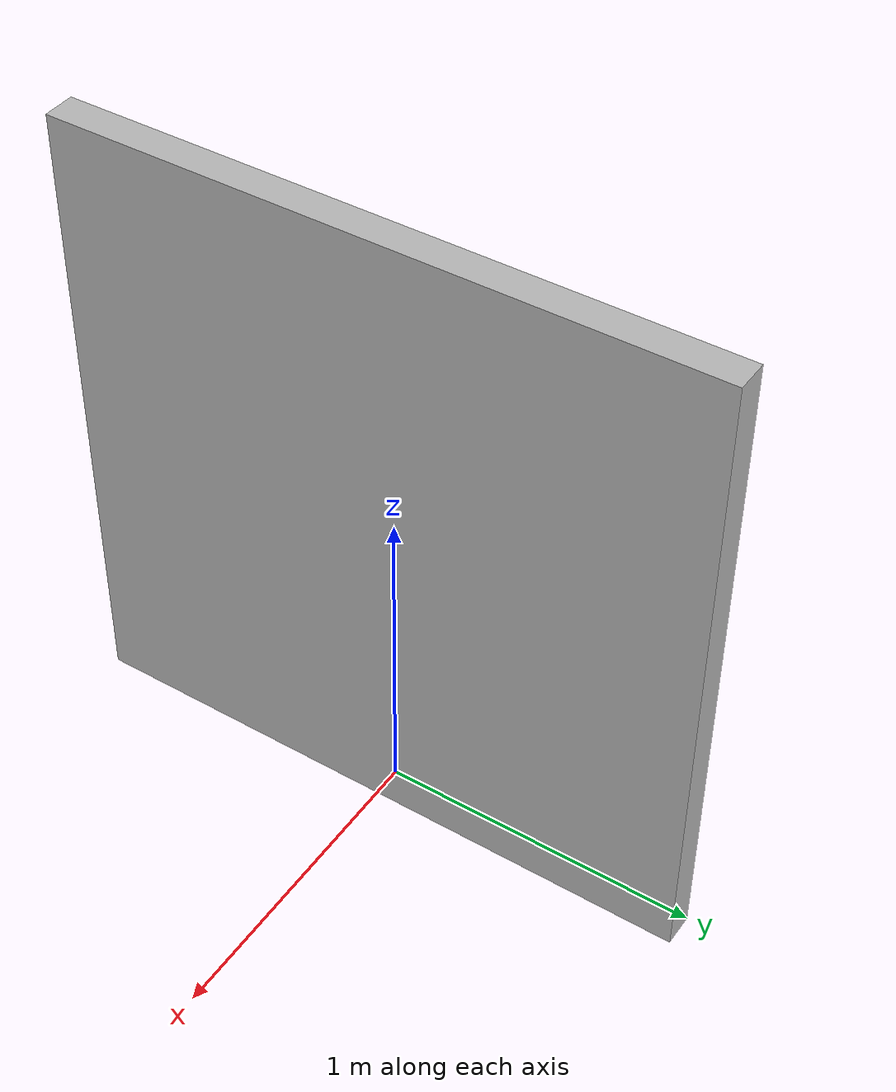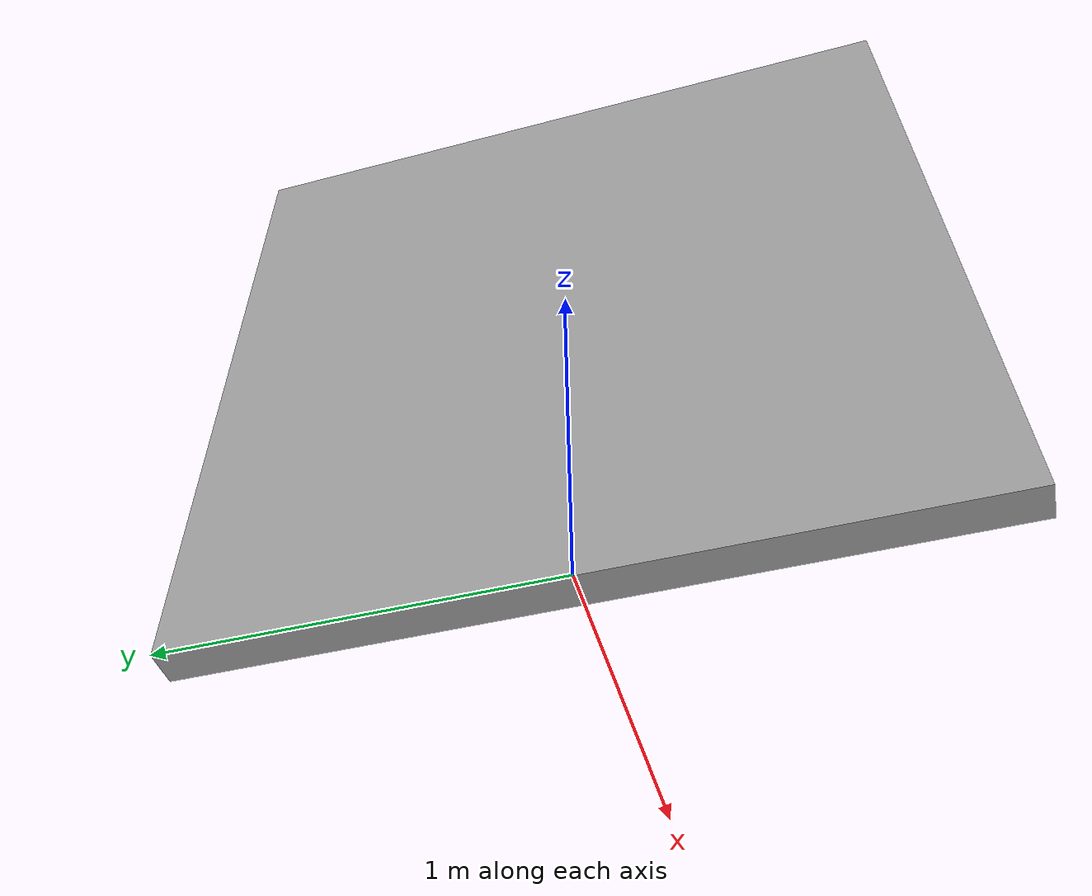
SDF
<?xml version="1.0" ?>
<sdf version="1.6">
  <model name="apriltag_positioned">
  <static>false</static>
    <link name="link">
      <visual name="visual">
         <geometry>
           <mesh>
             <uri>model://tag_positioned/tag_positioned.dae</uri>
           </mesh>
         </geometry>
        <material>
        </material>
       </visual>
    </link>
  </model>
</sdf>
